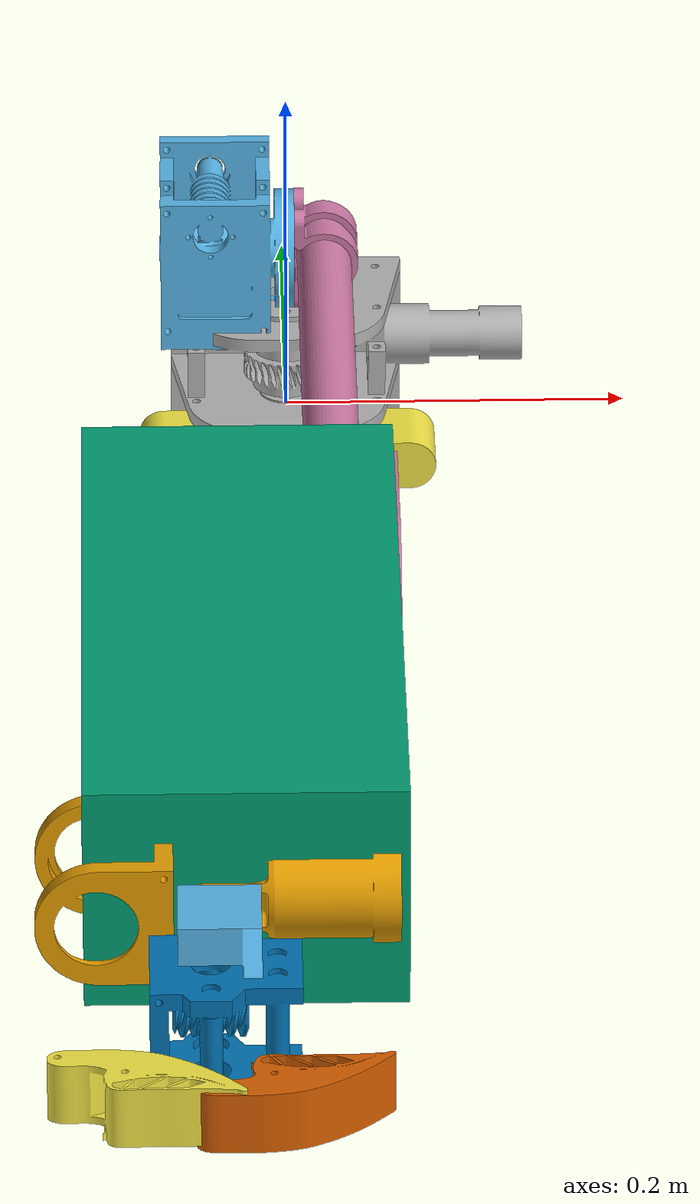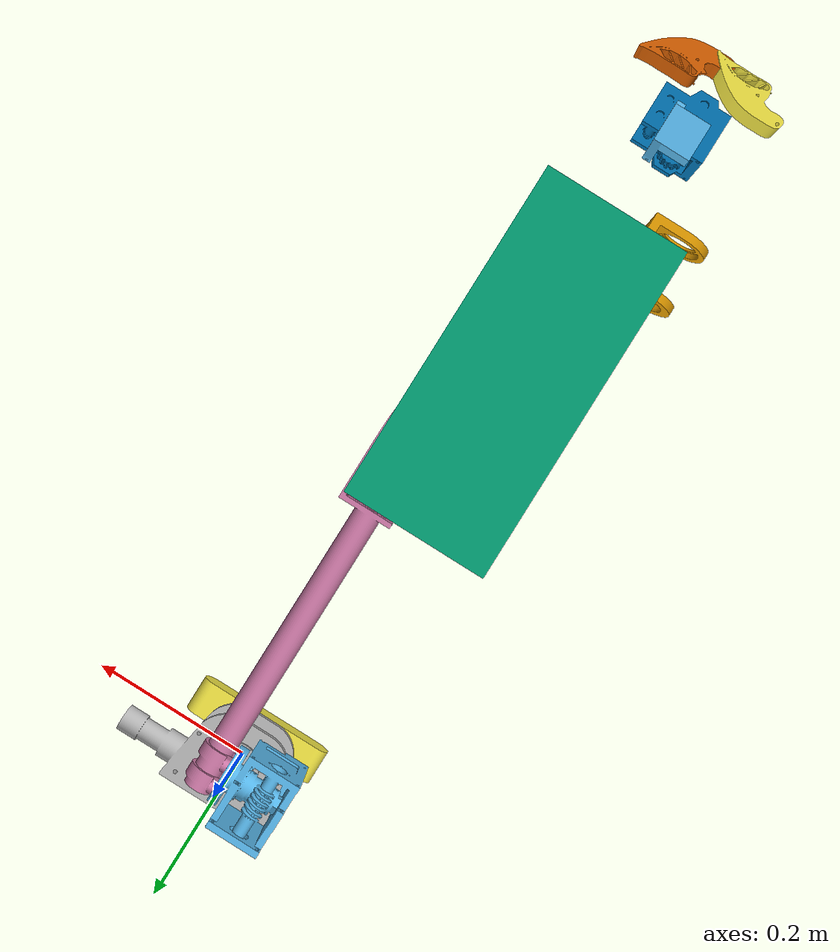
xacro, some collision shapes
<?xml version="1.0"?>
<robot xmlns:xacro="http://www.ros.org/wiki/xacro" name="rover_arm">
    <xacro:arg name="initial_positions_file" default="initial_positions.yaml" />
    <!-- Leave out the sim xacro's Gazebo ros2_control block: this file adds its own
         mock block below, and two blocks claiming the same joints conflict. -->
    <xacro:arg name="use_gazebo_ros2_control" default="false" />

    <!-- Import rover_arm urdf file -->
    <xacro:include filename="$(find rover_arm_description)/urdf/rover_arm_sim.xacro" />

    <!-- Import control_xacro -->
    <xacro:include filename="rover_arm.ros2_control.xacro" />

    <xacro:rover_arm_ros2_control name="FakeSystem" initial_positions_file="$(arg initial_positions_file)"/>

</robot>

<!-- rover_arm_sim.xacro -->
<robot xmlns:xacro="http://www.ros.org/wiki/xacro" name="rover_arm">
  <xacro:arg name="use_gazebo_ros2_control" default="true"/>

  <xacro:macro name="aluminum_material" params="link_name">
    <gazebo reference="${link_name}">
      <visual>
        <material>
          <ambient>0.6 0.6 0.6 1.0</ambient>
          <diffuse>0.7 0.7 0.7 1.0</diffuse>
          <specular>0.8 0.8 0.8 1.0</specular>
        </material>
      </visual>
      <mu1>0.5</mu1>
      <mu2>0.6</mu2>
    </gazebo>
  </xacro:macro>

  <xacro:macro name="blue_pla" params="link_name">
    <gazebo reference="${link_name}">
      <visual>
        <material>
          <ambient>0.68 0.85 0.90 1.0</ambient>
          <diffuse>0.68 0.85 0.90 1.0</diffuse>
          <specular>0.2 0.2 0.2 1.0</specular>
        </material>
      </visual>
    </gazebo>
  </xacro:macro>

  <xacro:macro name="zed_black" params="link_name">
    <gazebo reference="${link_name}">
      <visual>
        <material>
          <ambient>0.1 0.1 0.1 1.0</ambient>
          <diffuse>0.15 0.15 0.15 1.0</diffuse>
          <specular>0.4 0.4 0.4 1.0</specular>
        </material>
      </visual>
    </gazebo>
  </xacro:macro>

  <link name="world" />

  <link name="base_link">
    <inertial>
      <origin xyz="0.001193 0.001028 0.047499" rpy="0 0 -1.570796" />
      <mass value="1.062" />
      <inertia ixx="0.001357" ixy="0" ixz="0" iyy="0.001521" iyz="0" izz="0.001281" />
    </inertial>
    <visual>
      <origin xyz="0.001193 0.001028 0.047499" rpy="0 0 0" />
      <geometry>
        <mesh filename="package://rover_arm_description/urdf/meshes/base_link_visual.stl" />
      </geometry>
    </visual>
    <collision>
      <origin xyz="0.001193 0.001028 0.047499" rpy="0 0 -1.570796" />
      <geometry>
        <box size="0.090314 0.079456 0.094999" />
      </geometry>
    </collision>
  </link>
  <xacro:aluminum_material link_name="base_link"/>

  <link name="elbow_link">
    <inertial>
      <origin xyz="0.139619 -0.000409 0.08721" rpy="1.570796 0 -1.570796" />
      <mass value="2.571" />
      <inertia ixx="0.042429" ixy="0" ixz="0" iyy="0.039541" iyz="0" izz="0.010207" />
    </inertial>
    <visual>
      <origin xyz="0.139619 -0.000409 0.08721" rpy="-1.570796 1.570796 0" />
      <geometry>
        <mesh filename="package://rover_arm_description/urdf/meshes/elbow_link_visual.stl" />
      </geometry>
    </visual>
    <collision>
      <origin xyz="0.139619 -0.000409 0.08721" rpy="1.570796 0 -1.570796" />
      <geometry>
        <box size="0.130697 0.174815 0.409236" />
      </geometry>
    </collision>
  </link>
  <xacro:aluminum_material link_name="elbow_link"/>

  <link name="left_finger_link">
    <inertial>
      <origin xyz="-0.013622 -0.083285 0" rpy="0 0 -3.141593" />
      <mass value="0.132" />
      <inertia ixx="0.000455" ixy="0" ixz="0" iyy="0.000455" iyz="0" izz="0.000455" />
    </inertial>
    <visual>
      <origin xyz="-0.013622 -0.083285 0" rpy="0 0 0" />
      <geometry>
        <mesh filename="package://rover_arm_description/urdf/meshes/left_finger_link_visual.stl" />
      </geometry>
    </visual>
    <collision>
      <origin xyz="-0.013622 -0.083285 0" rpy="0 0 -3.141593" />
      <geometry>
        <mesh filename="package://rover_arm_description/urdf/meshes/left_finger_link_collision.stl" />
      </geometry>
    </collision>
  </link>
  <xacro:aluminum_material link_name="left_finger_link"/>

  <link name="palm_link">
    <inertial>
      <origin xyz="-0.003068 0.039999 0" rpy="0 0 1.570796" />
      <mass value="0.453" />
      <inertia ixx="0.000454" ixy="0" ixz="0" iyy="0.000454" iyz="0" izz="0.000483" />
    </inertial>
    <visual>
      <origin xyz="-0.003068 0.039999 0" rpy="0 0 3.141593" />
      <geometry>
        <mesh filename="package://rover_arm_description/urdf/meshes/palm_link_visual.stl" />
      </geometry>
    </visual>
    <collision>
      <origin xyz="-0.003068 0.039999 0" rpy="0 0 1.570796" />
      <geometry>
        <box size="0.079999 0.079998 0.074999" />
      </geometry>
    </collision>
  </link>
  <xacro:aluminum_material link_name="palm_link"/>

  <link name="right_finger_link">
    <inertial>
      <origin xyz="0.013622 -0.083285 0" rpy="3.141593 0 0" />
      <mass value="0.132" />
      <inertia ixx="0.000455" ixy="0" ixz="0" iyy="0.000455" iyz="0" izz="0.000455" />
    </inertial>
    <visual>
      <origin xyz="0.013622 -0.083285 0" rpy="0 0 0" />
      <geometry>
        <mesh filename="package://rover_arm_description/urdf/meshes/right_finger_link_visual.stl" />
      </geometry>
    </visual>
    <collision>
      <origin xyz="0.013622 -0.083285 0" rpy="3.141593 0 0" />
      <geometry>
        <mesh filename="package://rover_arm_description/urdf/meshes/right_finger_link_collision.stl" />
      </geometry>
    </collision>
  </link>
  <xacro:aluminum_material link_name="right_finger_link"/>

  <link name="shoulder_link">
    <inertial>
      <origin xyz="0 -0.208547 0.0205" rpy="0 0 0" />
      <mass value="0.505" />
      <inertia ixx="0.009733" ixy="0" ixz="0" iyy="0.000482" iyz="0" izz="0.009859" />
    </inertial>
    <visual>
      <origin xyz="-0.0205 -0.208547 0" rpy="0 -3.141593 0" />
      <geometry>
        <mesh filename="package://rover_arm_description/urdf/meshes/shoulder_link_visual.stl" />
      </geometry>
    </visual>
    <collision>
      <origin xyz="0 -0.208547 0.0205" rpy="0 0 0" />
      <geometry>
        <box size="0.084999 0.476494 0.064999" />
      </geometry>
    </collision>
  </link>
  <xacro:aluminum_material link_name="shoulder_link"/>

  <link name="stand_link">
    <inertial>
      <origin xyz="0.035906 -0.000442 0.0135" rpy="0 0 0" />
      <mass value="1.897" />
      <inertia ixx="0.003948" ixy="0" ixz="0" iyy="0.009139" iyz="0" izz="0.00861" />
    </inertial>
    <visual>
      <origin xyz="0.035906 -0.000442 0.0135" rpy="0 0 0" />
      <geometry>
        <mesh filename="package://rover_arm_description/urdf/meshes/stand_link_visual.stl" />
      </geometry>
    </visual>
    <collision>
      <origin xyz="0.035906 -0.000442 0.0135" rpy="0 0 0" />
      <geometry>
        <box size="0.20892 0.104 0.119" />
      </geometry>
    </collision>
  </link>
  <xacro:aluminum_material link_name="stand_link"/>

  <link name="wrist_link">
    <inertial>
      <origin xyz="0 -0.064871 0" rpy="0 1.570796 0" />
      <mass value="0.45" />
      <inertia ixx="0.001685" ixy="0" ixz="0" iyy="0.000436" iyz="0" izz="0.001617" />
    </inertial>
    <visual>
      <origin xyz="0 -0.06487 0" rpy="0 -3.141593 0" />
      <geometry>
        <mesh filename="package://rover_arm_description/urdf/meshes/wrist_link_visual.stl" />
      </geometry>
    </visual>
    <collision>
      <origin xyz="0 -0.064871 0" rpy="0 1.570796 0" />
      <geometry>
        <box size="0.069999 0.195497 0.081999" />
      </geometry>
    </collision>
  </link>
  <xacro:aluminum_material link_name="wrist_link"/>

  <link name="camera_mount_link">
    <inertial>
      <origin xyz="0 0.02205 0.00615" rpy="0 0 0" />
      <mass value="0.15" />
      <inertia ixx="0.000037" ixy="0" ixz="0" iyy="0.000076" iyz="0" izz="0.000088" />
    </inertial>
    <visual>
      <origin xyz="0 0.02205 0.00615" rpy="0 0 0" />
      <geometry>
        <mesh filename="package://rover_arm_description/urdf/meshes/camera_mount_link_visual.stl" />
      </geometry>
    </visual>
    <collision>
      <origin xyz="0 0.02205 0.00615" rpy="0 0 0" />
      <geometry>
        <box size="0.071199 0.044099 0.0323" />
      </geometry>
    </collision>
  </link>
  <xacro:blue_pla link_name="camera_mount_link"/>

  <link name="gripper_camera_optical_frame"/>

  <link name="zed_camera_link">
    <inertial>
      <origin xyz="0 0 0" rpy="0 0 0" />
      <mass value="0.229" />
      <inertia ixx="0.000622" ixy="0" ixz="0" iyy="0.000053" iyz="0" izz="0.000604" />
    </inertial>
    <visual>
      <origin xyz="0.02155 0 0" rpy="0 0 0" />
      <geometry>
        <mesh filename="package://rover_arm_description/urdf/meshes/zed_camera_link_visual.stl" />
      </geometry>
    </visual>
    <collision>
      <origin xyz="0.02155 0 0" rpy="0 -1.570796 0" />
      <geometry>
        <box size="0.0303 0.1753 0.0431" />
      </geometry>
    </collision>
  </link>
  <xacro:zed_black link_name="zed_camera_link"/>

  <joint name="stand_link_joint" type="fixed">
    <origin xyz="0.0 0.0 0.0" rpy="0.0 0.0 0.0" />
    <parent link="world" />
    <child link="stand_link" />
  </joint>
  <joint name="base_link_joint" type="revolute">
    <origin xyz="-0.03596 0.000387 0.0595" rpy="0 0 0" />
    <parent link="stand_link" />
    <child link="base_link" />
    <axis xyz="0 0 1" />
    <limit effort="34.32" velocity="1" lower="-1.570795" upper="1.570795" />
  </joint>
  <joint name="elbow_link_joint" type="revolute">
    <origin xyz="-0.049999 -0.404295 0" rpy="-1.570797 0 -1.570796" />
    <parent link="shoulder_link" />
    <child link="elbow_link" />
    <axis xyz="0 0 1" />
    <limit effort="123.559998" velocity="1" lower="-3.141593" upper="3.141593" />
  </joint>
  <joint name="left_finger_link_joint" type="revolute">
    <origin xyz="0.024931 0.032 0" rpy="0 0 -3.141593" />
    <parent link="palm_link" />
    <child link="left_finger_link" />
    <axis xyz="0 0 1" />
    <limit effort="5.15" velocity="1" lower="-1.570795" upper="0.785398" />
  </joint>
  <joint name="palm_link_joint" type="revolute">
    <origin xyz="-0.000022 -0.162619 -0.00015" rpy="3.141593 0 0" />
    <parent link="wrist_link" />
    <child link="palm_link" />
    <axis xyz="0 1 0" />
    <limit effort="10" velocity="1" lower="-3.141593" upper="3.141593" />
  </joint>
  <joint name="right_finger_link_joint" type="revolute">
    <origin xyz="-0.025098 0.032462 -0.002467" rpy="0 0 3.141593" />
    <parent link="palm_link" />
    <child link="right_finger_link" />
    <axis xyz="0 0 1" />
    <limit effort="5.15" velocity="1" lower="-0.785398" upper="1.570795" />
  </joint>
  <joint name="shoulder_link_joint" type="revolute">
    <origin xyz="0.040749 -0.000139 0.044051" rpy="0 3.141593 0" />
    <parent link="base_link" />
    <child link="shoulder_link" />
    <axis xyz="1 0 0" />
    <limit effort="137.300003" velocity="1" lower="-0.3927" upper="1.5708" />
  </joint>
  <joint name="wrist_link_joint" type="revolute">
    <origin xyz="0.266997 -0.000647 0.102497" rpy="1.570796 -1.570796 0" />
    <parent link="elbow_link" />
    <child link="wrist_link" />
    <axis xyz="1 0 0" />
    <limit effort="27.459999" velocity="1" lower="-1.570795" upper="1.570795" />
  </joint>
  <joint name="camera_mount_link_joint" type="fixed">
    <origin xyz="-0.000069 0 0.0375" rpy="0 0 0" />
    <parent link="palm_link" />
    <child link="camera_mount_link" />
  </joint>
  <joint name="camera_optical_joint" type="fixed">
    <origin xyz="0 0.02 0.035" rpy="0 ${pi/15} 1.57079632679"/>
    <parent link="camera_mount_link"/>
    <child link="gripper_camera_optical_frame"/>
  </joint>
  <joint name="zed_camera_link_joint" type="fixed">
    <origin xyz="-0.000054 -0.052442 -0.01515" rpy="0 0 1.570796" />
    <parent link="stand_link" />
    <child link="zed_camera_link" />
  </joint>
  <link name="zed_camera_optical_frame"/>
  <joint name="zed_camera_optical_frame_joint" type="fixed">
    <origin xyz="0.0 0.0 0.0" rpy="${-pi/2} 0.0 ${pi/2}"/>
    <parent link="zed_camera_link"/>
    <child link="zed_camera_optical_frame"/>
  </joint>

  <xacro:if value="$(arg use_gazebo_ros2_control)">
  <ros2_control name="GazeboSimSystem" type="system">
    <hardware>
      <plugin>gz_ros2_control/GazeboSimSystem</plugin>
    </hardware>

    <joint name="base_link_joint">
      <command_interface name="position">
        <param name="min">-1.570795</param>
        <param name="max">1.570795</param>
      </command_interface>
      <state_interface name="position"/>
      <state_interface name="velocity"/>
    </joint>

    <joint name="shoulder_link_joint">
      <command_interface name="position">
        <param name="min">-0.3927</param>
        <param name="max">1.5708</param>
      </command_interface>
      <state_interface name="position"/>
      <state_interface name="velocity"/>
    </joint>

    <joint name="elbow_link_joint">
      <command_interface name="position">
        <param name="min">-3.141593</param>
        <param name="max">3.141593</param>
      </command_interface>
      <state_interface name="position"/>
      <state_interface name="velocity"/>
    </joint>

    <joint name="wrist_link_joint">
      <command_interface name="position">
        <param name="min">-1.570795</param>
        <param name="max">1.570795</param>
      </command_interface>
      <state_interface name="position"/>
      <state_interface name="velocity"/>
    </joint>

    <joint name="palm_link_joint">
      <command_interface name="position">
        <param name="min">-3.141593</param>
        <param name="max">3.141593</param>
      </command_interface>
      <state_interface name="position"/>
      <state_interface name="velocity"/>
    </joint>

    <joint name="left_finger_link_joint">
      <command_interface name="position">
        <param name="min">-1.570795</param>
        <param name="max">0.785398</param>
      </command_interface>
      <state_interface name="position"/>
      <state_interface name="velocity"/>
    </joint>

    <joint name="right_finger_link_joint">
      <command_interface name="position">
        <param name="min">-0.785398</param>
        <param name="max">1.570795</param>
      </command_interface>
      <state_interface name="position"/>
      <state_interface name="velocity"/>
    </joint>
  </ros2_control>

  <gazebo>
    <plugin filename="gz_ros2_control-system" name="gz_ros2_control::GazeboSimROS2ControlPlugin">
      <parameters>$(find rover_arm_description)/config/ros2_controllers_sim.yaml</parameters>
    </plugin>
  </gazebo>
  </xacro:if>

  <gazebo reference="left_finger_link">
    <self_collide>true</self_collide>
  </gazebo>

  <gazebo reference="right_finger_link">
    <self_collide>true</self_collide>
  </gazebo>

  <gazebo reference="palm_link">
    <self_collide>true</self_collide>
  </gazebo>

  <gazebo>
    <plugin filename="ignition-gazebo-sensors-system" name="ignition::gazebo::systems::Sensors">
      <render_engine>ogre2</render_engine>
    </plugin>
  </gazebo>

  <gazebo reference="gripper_camera_optical_frame">
    <sensor name="camera_mount_link_sensor" type="camera">
      <always_on>true</always_on>
      <update_rate>30</update_rate>
      <visualize>false</visualize>
      <topic>/gripper_camera/image</topic>
      <pose>0 0 0 0 0 0</pose>
      <camera>
        <horizontal_fov>0.959931</horizontal_fov>
        <image>
          <width>1280</width>
          <height>720</height>
          <format>R8G8B8</format>
        </image>
        <clip>
          <near>0.1</near>
          <far>100</far>
        </clip>
      </camera>
    </sensor>
  </gazebo>

  <!-- ZED 2i RGBD Camera & IMU Configurations -->
  <gazebo reference="zed_camera_optical_frame">
    <sensor name="zed_camera_link_sensor" type="depth_camera">
      <always_on>true</always_on>
      <update_rate>15</update_rate>
      <visualize>false</visualize>
      <topic>/zed/zed_node/rgb/color/rect/image</topic>
      <pose>0.000442 0.035906 -0.0135 0 0 0</pose>
      <camera>
        <horizontal_fov>1.919862</horizontal_fov>
        <image>
          <width>1280</width>
          <height>720</height>
          <format>R8G8B8</format>
        </image>
        <clip>
          <near>0.2</near>
          <far>20</far>
        </clip>
      </camera>
      <depth_camera>
        <o>
          <type>depth</type>
        </o>
      </depth_camera>
    </sensor>

    <!-- 2. THE INTERNAL IMU SENSOR -->
    <sensor name="zed_imu_sensor" type="imu">
      <always_on>true</always_on>
      <update_rate>100</update_rate>
      <visualize>false</visualize>
      <topic>/zed/zed_node/imu/data</topic>
      <!-- POSE FIX: Aligned precisely with the camera sensor lens center -->
      <pose>0 -0.02155 0 0 0 0</pose>
      <imu>
        <angular_velocity>
          <x><noise type="gaussian"><mean>0.0</mean><stddev>2e-4</stddev></noise></x>
          <y><noise type="gaussian"><mean>0.0</mean><stddev>2e-4</stddev></noise></y>
          <z><noise type="gaussian"><mean>0.0</mean><stddev>2e-4</stddev></noise></z>
        </angular_velocity>
        <linear_acceleration>
          <x><noise type="gaussian"><mean>0.0</mean><stddev>1.7e-2</stddev></noise></x>
          <y><noise type="gaussian"><mean>0.0</mean><stddev>1.7e-2</stddev></noise></y>
          <z><noise type="gaussian"><mean>0.0</mean><stddev>1.7e-2</stddev></noise></z>
        </linear_acceleration>
      </imu>
    </sensor>

  </gazebo>
</robot>
